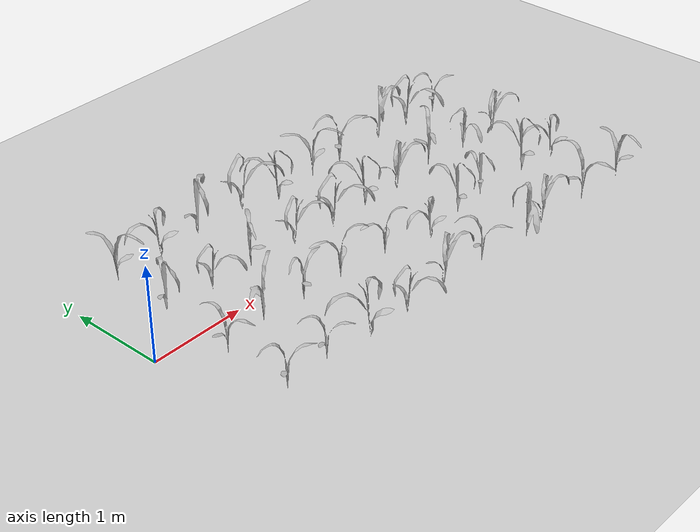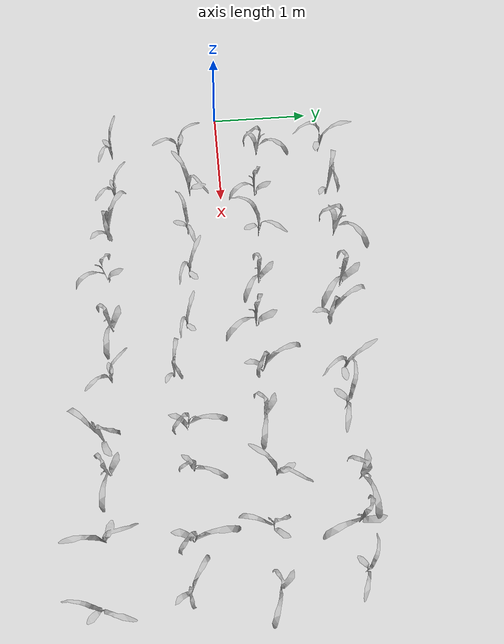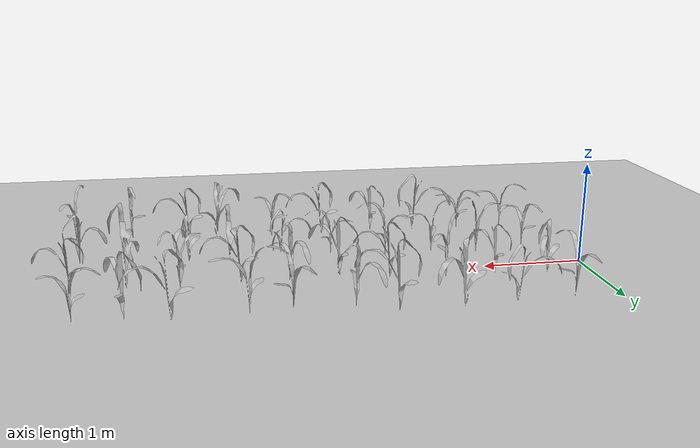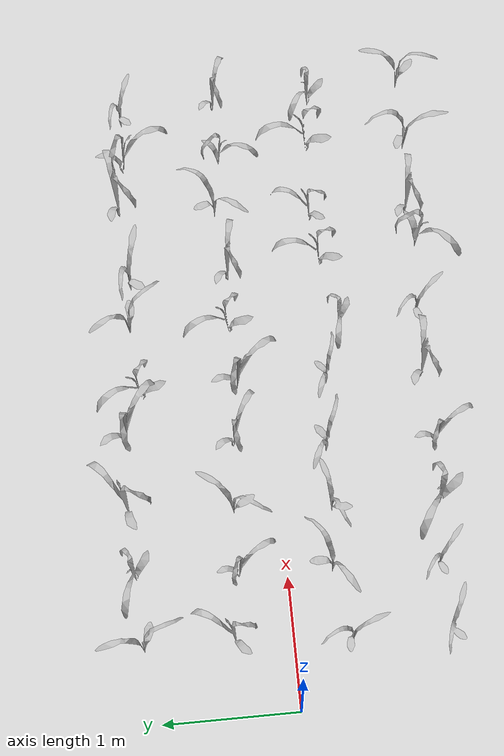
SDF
<sdf version="1.6">
 <world name="default">
  <model name="ground_plane">
   <static>1</static>
   <link name="link">
    <collision name="collision">
     <geometry><plane><normal>0 0 1</normal><size>100 100</size></plane></geometry>
     <surface>
      <contact><collide_bitmask>65535</collide_bitmask></contact>
      <friction><ode><mu>100</mu><mu2>50</mu2></ode></friction>
     </surface>
    </collision>
    <visual name="visual">
     <cast_shadows>0</cast_shadows>
     <geometry><plane><normal>0 0 1</normal><size>100 100</size></plane></geometry>
     <material>
      <script><uri>file://media/materials/scripts/gazebo.material</uri><name>Gazebo/Grey</name></script>
     </material>
    </visual>
   </link>
  </model>
  <model name="maize_01_0000">
   <pose>0.523966762746438 0.4150326742908084 0.05 0 -0 1.8050301071794776</pose>
   <link name="maize_01_0000_link">
    <inertial>
     <mass>5.0</mass>
     <inertia>
      <ixx>0.0033416667</ixx>
      <ixy>0</ixy>
      <ixz>0</ixz>
      <iyy>0.0033416667</iyy>
      <iyz>0</iyz>
      <izz>0.000016666667</izz>
     </inertia>
     <pose>0 0 0.1 0 0 0</pose>
    </inertial>
    <collision name="collision">
     <pose>0 0 0.2 0 -0 0</pose>
     <geometry><box><size>0.02 0.02 0.4</size></box></geometry>
     <surface><friction><ode><mu>10</mu><mu2>10</mu2></ode></friction></surface>
    </collision>
    <visual name="visual">
     <geometry>
      <mesh>
       <uri>model://maize_01/meshes/maize_01.dae</uri>
       <scale>0.5822569920695913 0.5822569920695913 0.5822569920695913</scale>
      </mesh>
     </geometry>
    </visual>
   </link>
  </model>
  <model name="maize_02_0001">
   <pose>0.5248532753365917 1.0798717160746447 0.05 0 -0 3.9507558975377663</pose>
   <link name="maize_02_0001_link">
    <inertial>
     <mass>5.0</mass>
     <inertia>
      <ixx>0.0033416667</ixx>
      <ixy>0</ixy>
      <ixz>0</ixz>
      <iyy>0.0033416667</iyy>
      <iyz>0</iyz>
      <izz>0.000016666667</izz>
     </inertia>
     <pose>0 0 0.1 0 0 0</pose>
    </inertial>
    <collision name="collision">
     <pose>0 0 0.2 0 -0 0</pose>
     <geometry><box><size>0.02 0.02 0.4</size></box></geometry>
     <surface><friction><ode><mu>10</mu><mu2>10</mu2></ode></friction></surface>
    </collision>
    <visual name="visual">
     <geometry>
      <mesh>
       <uri>model://maize_02/meshes/maize_02.dae</uri>
       <scale>0.6298423139953372 0.6298423139953372 0.6298423139953372</scale>
      </mesh>
     </geometry>
    </visual>
   </link>
  </model>
  <model name="maize_02_0002">
   <pose>0.46515844750414903 -0.4189155606194654 0.05 0 -0 0.9365900454225843</pose>
   <link name="maize_02_0002_link">
    <inertial>
     <mass>5.0</mass>
     <inertia>
      <ixx>0.0033416667</ixx>
      <ixy>0</ixy>
      <ixz>0</ixz>
      <iyy>0.0033416667</iyy>
      <iyz>0</iyz>
      <izz>0.000016666667</izz>
     </inertia>
     <pose>0 0 0.1 0 0 0</pose>
    </inertial>
    <collision name="collision">
     <pose>0 0 0.2 0 -0 0</pose>
     <geometry><box><size>0.02 0.02 0.4</size></box></geometry>
     <surface><friction><ode><mu>10</mu><mu2>10</mu2></ode></friction></surface>
    </collision>
    <visual name="visual">
     <geometry>
      <mesh>
       <uri>model://maize_02/meshes/maize_02.dae</uri>
       <scale>0.5298663133267577 0.5298663133267577 0.5298663133267577</scale>
      </mesh>
     </geometry>
    </visual>
   </link>
  </model>
  <model name="maize_02_0003">
   <pose>0.4602447589462634 -1.132043322837041 0.05 0 -0 1.7978640900643768</pose>
   <link name="maize_02_0003_link">
    <inertial>
     <mass>5.0</mass>
     <inertia>
      <ixx>0.0033416667</ixx>
      <ixy>0</ixy>
      <ixz>0</ixz>
      <iyy>0.0033416667</iyy>
      <iyz>0</iyz>
      <izz>0.000016666667</izz>
     </inertia>
     <pose>0 0 0.1 0 0 0</pose>
    </inertial>
    <collision name="collision">
     <pose>0 0 0.2 0 -0 0</pose>
     <geometry><box><size>0.02 0.02 0.4</size></box></geometry>
     <surface><friction><ode><mu>10</mu><mu2>10</mu2></ode></friction></surface>
    </collision>
    <visual name="visual">
     <geometry>
      <mesh>
       <uri>model://maize_02/meshes/maize_02.dae</uri>
       <scale>0.5381608076337044 0.5381608076337044 0.5381608076337044</scale>
      </mesh>
     </geometry>
    </visual>
   </link>
  </model>
  <model name="maize_01_0004">
   <pose>1.0199203152615652 0.35299629401230775 0.05 0 -0 6.0382954465742475</pose>
   <link name="maize_01_0004_link">
    <inertial>
     <mass>5.0</mass>
     <inertia>
      <ixx>0.0033416667</ixx>
      <ixy>0</ixy>
      <ixz>0</ixz>
      <iyy>0.0033416667</iyy>
      <iyz>0</iyz>
      <izz>0.000016666667</izz>
     </inertia>
     <pose>0 0 0.1 0 0 0</pose>
    </inertial>
    <collision name="collision">
     <pose>0 0 0.2 0 -0 0</pose>
     <geometry><box><size>0.02 0.02 0.4</size></box></geometry>
     <surface><friction><ode><mu>10</mu><mu2>10</mu2></ode></friction></surface>
    </collision>
    <visual name="visual">
     <geometry>
      <mesh>
       <uri>model://maize_01/meshes/maize_01.dae</uri>
       <scale>0.5396540530929095 0.5396540530929095 0.5396540530929095</scale>
      </mesh>
     </geometry>
    </visual>
   </link>
  </model>
  <model name="maize_01_0005">
   <pose>1.0654910295923556 1.105222662462426 0.05 0 -0 3.696057205758997</pose>
   <link name="maize_01_0005_link">
    <inertial>
     <mass>5.0</mass>
     <inertia>
      <ixx>0.0033416667</ixx>
      <ixy>0</ixy>
      <ixz>0</ixz>
      <iyy>0.0033416667</iyy>
      <iyz>0</iyz>
      <izz>0.000016666667</izz>
     </inertia>
     <pose>0 0 0.1 0 0 0</pose>
    </inertial>
    <collision name="collision">
     <pose>0 0 0.2 0 -0 0</pose>
     <geometry><box><size>0.02 0.02 0.4</size></box></geometry>
     <surface><friction><ode><mu>10</mu><mu2>10</mu2></ode></friction></surface>
    </collision>
    <visual name="visual">
     <geometry>
      <mesh>
       <uri>model://maize_01/meshes/maize_01.dae</uri>
       <scale>0.5877867600977696 0.5877867600977696 0.5877867600977696</scale>
      </mesh>
     </geometry>
    </visual>
   </link>
  </model>
  <model name="maize_02_0006">
   <pose>0.9898213369435384 -0.32654735532423174 0.05 0 -0 5.819287457244414</pose>
   <link name="maize_02_0006_link">
    <inertial>
     <mass>5.0</mass>
     <inertia>
      <ixx>0.0033416667</ixx>
      <ixy>0</ixy>
      <ixz>0</ixz>
      <iyy>0.0033416667</iyy>
      <iyz>0</iyz>
      <izz>0.000016666667</izz>
     </inertia>
     <pose>0 0 0.1 0 0 0</pose>
    </inertial>
    <collision name="collision">
     <pose>0 0 0.2 0 -0 0</pose>
     <geometry><box><size>0.02 0.02 0.4</size></box></geometry>
     <surface><friction><ode><mu>10</mu><mu2>10</mu2></ode></friction></surface>
    </collision>
    <visual name="visual">
     <geometry>
      <mesh>
       <uri>model://maize_02/meshes/maize_02.dae</uri>
       <scale>0.6463608204224338 0.6463608204224338 0.6463608204224338</scale>
      </mesh>
     </geometry>
    </visual>
   </link>
  </model>
  <model name="maize_02_0007">
   <pose>0.961585045974226 -1.1105220143562582 0.05 0 -0 1.4668708817369676</pose>
   <link name="maize_02_0007_link">
    <inertial>
     <mass>5.0</mass>
     <inertia>
      <ixx>0.0033416667</ixx>
      <ixy>0</ixy>
      <ixz>0</ixz>
      <iyy>0.0033416667</iyy>
      <iyz>0</iyz>
      <izz>0.000016666667</izz>
     </inertia>
     <pose>0 0 0.1 0 0 0</pose>
    </inertial>
    <collision name="collision">
     <pose>0 0 0.2 0 -0 0</pose>
     <geometry><box><size>0.02 0.02 0.4</size></box></geometry>
     <surface><friction><ode><mu>10</mu><mu2>10</mu2></ode></friction></surface>
    </collision>
    <visual name="visual">
     <geometry>
      <mesh>
       <uri>model://maize_02/meshes/maize_02.dae</uri>
       <scale>0.5000459984883049 0.5000459984883049 0.5000459984883049</scale>
      </mesh>
     </geometry>
    </visual>
   </link>
  </model>
  <model name="maize_02_0008">
   <pose>1.503632227551504 0.349260133318818 0.05 0 -0 3.076100888778547</pose>
   <link name="maize_02_0008_link">
    <inertial>
     <mass>5.0</mass>
     <inertia>
      <ixx>0.0033416667</ixx>
      <ixy>0</ixy>
      <ixz>0</ixz>
      <iyy>0.0033416667</iyy>
      <iyz>0</iyz>
      <izz>0.000016666667</izz>
     </inertia>
     <pose>0 0 0.1 0 0 0</pose>
    </inertial>
    <collision name="collision">
     <pose>0 0 0.2 0 -0 0</pose>
     <geometry><box><size>0.02 0.02 0.4</size></box></geometry>
     <surface><friction><ode><mu>10</mu><mu2>10</mu2></ode></friction></surface>
    </collision>
    <visual name="visual">
     <geometry>
      <mesh>
       <uri>model://maize_02/meshes/maize_02.dae</uri>
       <scale>0.6283412082809666 0.6283412082809666 0.6283412082809666</scale>
      </mesh>
     </geometry>
    </visual>
   </link>
  </model>
  <model name="maize_01_0009">
   <pose>1.558977972683102 1.1187317562141557 0.05 0 -0 1.4716533760433117</pose>
   <link name="maize_01_0009_link">
    <inertial>
     <mass>5.0</mass>
     <inertia>
      <ixx>0.0033416667</ixx>
      <ixy>0</ixy>
      <ixz>0</ixz>
      <iyy>0.0033416667</iyy>
      <iyz>0</iyz>
      <izz>0.000016666667</izz>
     </inertia>
     <pose>0 0 0.1 0 0 0</pose>
    </inertial>
    <collision name="collision">
     <pose>0 0 0.2 0 -0 0</pose>
     <geometry><box><size>0.02 0.02 0.4</size></box></geometry>
     <surface><friction><ode><mu>10</mu><mu2>10</mu2></ode></friction></surface>
    </collision>
    <visual name="visual">
     <geometry>
      <mesh>
       <uri>model://maize_01/meshes/maize_01.dae</uri>
       <scale>0.6826799311454922 0.6826799311454922 0.6826799311454922</scale>
      </mesh>
     </geometry>
    </visual>
   </link>
  </model>
  <model name="maize_02_0010">
   <pose>1.4536848330133545 -0.37425566543067856 0.05 0 -0 2.422375687809505</pose>
   <link name="maize_02_0010_link">
    <inertial>
     <mass>5.0</mass>
     <inertia>
      <ixx>0.0033416667</ixx>
      <ixy>0</ixy>
      <ixz>0</ixz>
      <iyy>0.0033416667</iyy>
      <iyz>0</iyz>
      <izz>0.000016666667</izz>
     </inertia>
     <pose>0 0 0.1 0 0 0</pose>
    </inertial>
    <collision name="collision">
     <pose>0 0 0.2 0 -0 0</pose>
     <geometry><box><size>0.02 0.02 0.4</size></box></geometry>
     <surface><friction><ode><mu>10</mu><mu2>10</mu2></ode></friction></surface>
    </collision>
    <visual name="visual">
     <geometry>
      <mesh>
       <uri>model://maize_02/meshes/maize_02.dae</uri>
       <scale>0.5736782465919196 0.5736782465919196 0.5736782465919196</scale>
      </mesh>
     </geometry>
    </visual>
   </link>
  </model>
  <model name="maize_01_0011">
   <pose>1.4444675356432104 -1.179642887555723 0.05 0 -0 3.4122779563719514</pose>
   <link name="maize_01_0011_link">
    <inertial>
     <mass>5.0</mass>
     <inertia>
      <ixx>0.0033416667</ixx>
      <ixy>0</ixy>
      <ixz>0</ixz>
      <iyy>0.0033416667</iyy>
      <iyz>0</iyz>
      <izz>0.000016666667</izz>
     </inertia>
     <pose>0 0 0.1 0 0 0</pose>
    </inertial>
    <collision name="collision">
     <pose>0 0 0.2 0 -0 0</pose>
     <geometry><box><size>0.02 0.02 0.4</size></box></geometry>
     <surface><friction><ode><mu>10</mu><mu2>10</mu2></ode></friction></surface>
    </collision>
    <visual name="visual">
     <geometry>
      <mesh>
       <uri>model://maize_01/meshes/maize_01.dae</uri>
       <scale>0.6784095090481377 0.6784095090481377 0.6784095090481377</scale>
      </mesh>
     </geometry>
    </visual>
   </link>
  </model>
  <model name="maize_01_0012">
   <pose>2.040732868175381 0.3005195694070919 0.05 0 -0 0.2899796782961759</pose>
   <link name="maize_01_0012_link">
    <inertial>
     <mass>5.0</mass>
     <inertia>
      <ixx>0.0033416667</ixx>
      <ixy>0</ixy>
      <ixz>0</ixz>
      <iyy>0.0033416667</iyy>
      <iyz>0</iyz>
      <izz>0.000016666667</izz>
     </inertia>
     <pose>0 0 0.1 0 0 0</pose>
    </inertial>
    <collision name="collision">
     <pose>0 0 0.2 0 -0 0</pose>
     <geometry><box><size>0.02 0.02 0.4</size></box></geometry>
     <surface><friction><ode><mu>10</mu><mu2>10</mu2></ode></friction></surface>
    </collision>
    <visual name="visual">
     <geometry>
      <mesh>
       <uri>model://maize_01/meshes/maize_01.dae</uri>
       <scale>0.595256392992198 0.595256392992198 0.595256392992198</scale>
      </mesh>
     </geometry>
    </visual>
   </link>
  </model>
  <model name="maize_01_0013">
   <pose>2.1368719891017847 1.106180763564035 0.05 0 -0 0.16974797185114474</pose>
   <link name="maize_01_0013_link">
    <inertial>
     <mass>5.0</mass>
     <inertia>
      <ixx>0.0033416667</ixx>
      <ixy>0</ixy>
      <ixz>0</ixz>
      <iyy>0.0033416667</iyy>
      <iyz>0</iyz>
      <izz>0.000016666667</izz>
     </inertia>
     <pose>0 0 0.1 0 0 0</pose>
    </inertial>
    <collision name="collision">
     <pose>0 0 0.2 0 -0 0</pose>
     <geometry><box><size>0.02 0.02 0.4</size></box></geometry>
     <surface><friction><ode><mu>10</mu><mu2>10</mu2></ode></friction></surface>
    </collision>
    <visual name="visual">
     <geometry>
      <mesh>
       <uri>model://maize_01/meshes/maize_01.dae</uri>
       <scale>0.6979724031252235 0.6979724031252235 0.6979724031252235</scale>
      </mesh>
     </geometry>
    </visual>
   </link>
  </model>
  <model name="maize_02_0014">
   <pose>1.931780257444167 -0.3824474502754521 0.05 0 -0 4.886222668759558</pose>
   <link name="maize_02_0014_link">
    <inertial>
     <mass>5.0</mass>
     <inertia>
      <ixx>0.0033416667</ixx>
      <ixy>0</ixy>
      <ixz>0</ixz>
      <iyy>0.0033416667</iyy>
      <iyz>0</iyz>
      <izz>0.000016666667</izz>
     </inertia>
     <pose>0 0 0.1 0 0 0</pose>
    </inertial>
    <collision name="collision">
     <pose>0 0 0.2 0 -0 0</pose>
     <geometry><box><size>0.02 0.02 0.4</size></box></geometry>
     <surface><friction><ode><mu>10</mu><mu2>10</mu2></ode></friction></surface>
    </collision>
    <visual name="visual">
     <geometry>
      <mesh>
       <uri>model://maize_02/meshes/maize_02.dae</uri>
       <scale>0.575836024601679 0.575836024601679 0.575836024601679</scale>
      </mesh>
     </geometry>
    </visual>
   </link>
  </model>
  <model name="maize_01_0015">
   <pose>1.9133926375941699 -1.2037670079675775 0.05 0 -0 6.033506653099774</pose>
   <link name="maize_01_0015_link">
    <inertial>
     <mass>5.0</mass>
     <inertia>
      <ixx>0.0033416667</ixx>
      <ixy>0</ixy>
      <ixz>0</ixz>
      <iyy>0.0033416667</iyy>
      <iyz>0</iyz>
      <izz>0.000016666667</izz>
     </inertia>
     <pose>0 0 0.1 0 0 0</pose>
    </inertial>
    <collision name="collision">
     <pose>0 0 0.2 0 -0 0</pose>
     <geometry><box><size>0.02 0.02 0.4</size></box></geometry>
     <surface><friction><ode><mu>10</mu><mu2>10</mu2></ode></friction></surface>
    </collision>
    <visual name="visual">
     <geometry>
      <mesh>
       <uri>model://maize_01/meshes/maize_01.dae</uri>
       <scale>0.5581267760683764 0.5581267760683764 0.5581267760683764</scale>
      </mesh>
     </geometry>
    </visual>
   </link>
  </model>
  <model name="maize_01_0016">
   <pose>2.510246999128019 0.23787252884046153 0.05 0 -0 6.144129899424734</pose>
   <link name="maize_01_0016_link">
    <inertial>
     <mass>5.0</mass>
     <inertia>
      <ixx>0.0033416667</ixx>
      <ixy>0</ixy>
      <ixz>0</ixz>
      <iyy>0.0033416667</iyy>
      <iyz>0</iyz>
      <izz>0.000016666667</izz>
     </inertia>
     <pose>0 0 0.1 0 0 0</pose>
    </inertial>
    <collision name="collision">
     <pose>0 0 0.2 0 -0 0</pose>
     <geometry><box><size>0.02 0.02 0.4</size></box></geometry>
     <surface><friction><ode><mu>10</mu><mu2>10</mu2></ode></friction></surface>
    </collision>
    <visual name="visual">
     <geometry>
      <mesh>
       <uri>model://maize_01/meshes/maize_01.dae</uri>
       <scale>0.6562338403578362 0.6562338403578362 0.6562338403578362</scale>
      </mesh>
     </geometry>
    </visual>
   </link>
  </model>
  <model name="maize_01_0017">
   <pose>2.493166982556981 0.9630720818078856 0.05 0 -0 2.861048662569731</pose>
   <link name="maize_01_0017_link">
    <inertial>
     <mass>5.0</mass>
     <inertia>
      <ixx>0.0033416667</ixx>
      <ixy>0</ixy>
      <ixz>0</ixz>
      <iyy>0.0033416667</iyy>
      <iyz>0</iyz>
      <izz>0.000016666667</izz>
     </inertia>
     <pose>0 0 0.1 0 0 0</pose>
    </inertial>
    <collision name="collision">
     <pose>0 0 0.2 0 -0 0</pose>
     <geometry><box><size>0.02 0.02 0.4</size></box></geometry>
     <surface><friction><ode><mu>10</mu><mu2>10</mu2></ode></friction></surface>
    </collision>
    <visual name="visual">
     <geometry>
      <mesh>
       <uri>model://maize_01/meshes/maize_01.dae</uri>
       <scale>0.629477505941498 0.629477505941498 0.629477505941498</scale>
      </mesh>
     </geometry>
    </visual>
   </link>
  </model>
  <model name="maize_02_0018">
   <pose>2.4838026439865604 -0.44149562420554733 0.05 0 -0 4.993970586922383</pose>
   <link name="maize_02_0018_link">
    <inertial>
     <mass>5.0</mass>
     <inertia>
      <ixx>0.0033416667</ixx>
      <ixy>0</ixy>
      <ixz>0</ixz>
      <iyy>0.0033416667</iyy>
      <iyz>0</iyz>
      <izz>0.000016666667</izz>
     </inertia>
     <pose>0 0 0.1 0 0 0</pose>
    </inertial>
    <collision name="collision">
     <pose>0 0 0.2 0 -0 0</pose>
     <geometry><box><size>0.02 0.02 0.4</size></box></geometry>
     <surface><friction><ode><mu>10</mu><mu2>10</mu2></ode></friction></surface>
    </collision>
    <visual name="visual">
     <geometry>
      <mesh>
       <uri>model://maize_02/meshes/maize_02.dae</uri>
       <scale>0.5095507926992316 0.5095507926992316 0.5095507926992316</scale>
      </mesh>
     </geometry>
    </visual>
   </link>
  </model>
  <model name="maize_01_0019">
   <pose>2.4671652501393573 -1.1738254497009892 0.05 0 -0 0.7211971315318042</pose>
   <link name="maize_01_0019_link">
    <inertial>
     <mass>5.0</mass>
     <inertia>
      <ixx>0.0033416667</ixx>
      <ixy>0</ixy>
      <ixz>0</ixz>
      <iyy>0.0033416667</iyy>
      <iyz>0</iyz>
      <izz>0.000016666667</izz>
     </inertia>
     <pose>0 0 0.1 0 0 0</pose>
    </inertial>
    <collision name="collision">
     <pose>0 0 0.2 0 -0 0</pose>
     <geometry><box><size>0.02 0.02 0.4</size></box></geometry>
     <surface><friction><ode><mu>10</mu><mu2>10</mu2></ode></friction></surface>
    </collision>
    <visual name="visual">
     <geometry>
      <mesh>
       <uri>model://maize_01/meshes/maize_01.dae</uri>
       <scale>0.629807478542989 0.629807478542989 0.629807478542989</scale>
      </mesh>
     </geometry>
    </visual>
   </link>
  </model>
  <model name="maize_01_0020">
   <pose>2.9889529004716753 0.25801577047027513 0.05 0 -0 2.71639642661828</pose>
   <link name="maize_01_0020_link">
    <inertial>
     <mass>5.0</mass>
     <inertia>
      <ixx>0.0033416667</ixx>
      <ixy>0</ixy>
      <ixz>0</ixz>
      <iyy>0.0033416667</iyy>
      <iyz>0</iyz>
      <izz>0.000016666667</izz>
     </inertia>
     <pose>0 0 0.1 0 0 0</pose>
    </inertial>
    <collision name="collision">
     <pose>0 0 0.2 0 -0 0</pose>
     <geometry><box><size>0.02 0.02 0.4</size></box></geometry>
     <surface><friction><ode><mu>10</mu><mu2>10</mu2></ode></friction></surface>
    </collision>
    <visual name="visual">
     <geometry>
      <mesh>
       <uri>model://maize_01/meshes/maize_01.dae</uri>
       <scale>0.6221070844538605 0.6221070844538605 0.6221070844538605</scale>
      </mesh>
     </geometry>
    </visual>
   </link>
  </model>
  <model name="maize_02_0021">
   <pose>3.0520632059223862 1.0240751103559858 0.05 0 -0 4.261147328329564</pose>
   <link name="maize_02_0021_link">
    <inertial>
     <mass>5.0</mass>
     <inertia>
      <ixx>0.0033416667</ixx>
      <ixy>0</ixy>
      <ixz>0</ixz>
      <iyy>0.0033416667</iyy>
      <iyz>0</iyz>
      <izz>0.000016666667</izz>
     </inertia>
     <pose>0 0 0.1 0 0 0</pose>
    </inertial>
    <collision name="collision">
     <pose>0 0 0.2 0 -0 0</pose>
     <geometry><box><size>0.02 0.02 0.4</size></box></geometry>
     <surface><friction><ode><mu>10</mu><mu2>10</mu2></ode></friction></surface>
    </collision>
    <visual name="visual">
     <geometry>
      <mesh>
       <uri>model://maize_02/meshes/maize_02.dae</uri>
       <scale>0.6331911358099501 0.6331911358099501 0.6331911358099501</scale>
      </mesh>
     </geometry>
    </visual>
   </link>
  </model>
  <model name="maize_01_0022">
   <pose>2.97400271973419 -0.5918598628877113 0.05 0 -0 3.7910285614634462</pose>
   <link name="maize_01_0022_link">
    <inertial>
     <mass>5.0</mass>
     <inertia>
      <ixx>0.0033416667</ixx>
      <ixy>0</ixy>
      <ixz>0</ixz>
      <iyy>0.0033416667</iyy>
      <iyz>0</iyz>
      <izz>0.000016666667</izz>
     </inertia>
     <pose>0 0 0.1 0 0 0</pose>
    </inertial>
    <collision name="collision">
     <pose>0 0 0.2 0 -0 0</pose>
     <geometry><box><size>0.02 0.02 0.4</size></box></geometry>
     <surface><friction><ode><mu>10</mu><mu2>10</mu2></ode></friction></surface>
    </collision>
    <visual name="visual">
     <geometry>
      <mesh>
       <uri>model://maize_01/meshes/maize_01.dae</uri>
       <scale>0.5028517858773822 0.5028517858773822 0.5028517858773822</scale>
      </mesh>
     </geometry>
    </visual>
   </link>
  </model>
  <model name="maize_02_0023">
   <pose>2.994720311939697 -1.1945998067587797 0.05 0 -0 1.3100654780904493</pose>
   <link name="maize_02_0023_link">
    <inertial>
     <mass>5.0</mass>
     <inertia>
      <ixx>0.0033416667</ixx>
      <ixy>0</ixy>
      <ixz>0</ixz>
      <iyy>0.0033416667</iyy>
      <iyz>0</iyz>
      <izz>0.000016666667</izz>
     </inertia>
     <pose>0 0 0.1 0 0 0</pose>
    </inertial>
    <collision name="collision">
     <pose>0 0 0.2 0 -0 0</pose>
     <geometry><box><size>0.02 0.02 0.4</size></box></geometry>
     <surface><friction><ode><mu>10</mu><mu2>10</mu2></ode></friction></surface>
    </collision>
    <visual name="visual">
     <geometry>
      <mesh>
       <uri>model://maize_02/meshes/maize_02.dae</uri>
       <scale>0.5348060385841131 0.5348060385841131 0.5348060385841131</scale>
      </mesh>
     </geometry>
    </visual>
   </link>
  </model>
  <model name="maize_01_0024">
   <pose>3.443074180217835 0.2284497880585611 0.05 0 -0 0.639792568922252</pose>
   <link name="maize_01_0024_link">
    <inertial>
     <mass>5.0</mass>
     <inertia>
      <ixx>0.0033416667</ixx>
      <ixy>0</ixy>
      <ixz>0</ixz>
      <iyy>0.0033416667</iyy>
      <iyz>0</iyz>
      <izz>0.000016666667</izz>
     </inertia>
     <pose>0 0 0.1 0 0 0</pose>
    </inertial>
    <collision name="collision">
     <pose>0 0 0.2 0 -0 0</pose>
     <geometry><box><size>0.02 0.02 0.4</size></box></geometry>
     <surface><friction><ode><mu>10</mu><mu2>10</mu2></ode></friction></surface>
    </collision>
    <visual name="visual">
     <geometry>
      <mesh>
       <uri>model://maize_01/meshes/maize_01.dae</uri>
       <scale>0.6128064751184193 0.6128064751184193 0.6128064751184193</scale>
      </mesh>
     </geometry>
    </visual>
   </link>
  </model>
  <model name="maize_02_0025">
   <pose>3.423280574257146 0.992229800525366 0.05 0 -0 1.9450103717449692</pose>
   <link name="maize_02_0025_link">
    <inertial>
     <mass>5.0</mass>
     <inertia>
      <ixx>0.0033416667</ixx>
      <ixy>0</ixy>
      <ixz>0</ixz>
      <iyy>0.0033416667</iyy>
      <iyz>0</iyz>
      <izz>0.000016666667</izz>
     </inertia>
     <pose>0 0 0.1 0 0 0</pose>
    </inertial>
    <collision name="collision">
     <pose>0 0 0.2 0 -0 0</pose>
     <geometry><box><size>0.02 0.02 0.4</size></box></geometry>
     <surface><friction><ode><mu>10</mu><mu2>10</mu2></ode></friction></surface>
    </collision>
    <visual name="visual">
     <geometry>
      <mesh>
       <uri>model://maize_02/meshes/maize_02.dae</uri>
       <scale>0.665604324518885 0.665604324518885 0.665604324518885</scale>
      </mesh>
     </geometry>
    </visual>
   </link>
  </model>
  <model name="maize_01_0026">
   <pose>3.5062867528112833 -0.5004778221379712 0.05 0 -0 2.3216417221331356</pose>
   <link name="maize_01_0026_link">
    <inertial>
     <mass>5.0</mass>
     <inertia>
      <ixx>0.0033416667</ixx>
      <ixy>0</ixy>
      <ixz>0</ixz>
      <iyy>0.0033416667</iyy>
      <iyz>0</iyz>
      <izz>0.000016666667</izz>
     </inertia>
     <pose>0 0 0.1 0 0 0</pose>
    </inertial>
    <collision name="collision">
     <pose>0 0 0.2 0 -0 0</pose>
     <geometry><box><size>0.02 0.02 0.4</size></box></geometry>
     <surface><friction><ode><mu>10</mu><mu2>10</mu2></ode></friction></surface>
    </collision>
    <visual name="visual">
     <geometry>
      <mesh>
       <uri>model://maize_01/meshes/maize_01.dae</uri>
       <scale>0.6098890040684718 0.6098890040684718 0.6098890040684718</scale>
      </mesh>
     </geometry>
    </visual>
   </link>
  </model>
  <model name="maize_01_0027">
   <pose>3.5920836885190277 -1.2672288973604182 0.05 0 -0 4.774702933948235</pose>
   <link name="maize_01_0027_link">
    <inertial>
     <mass>5.0</mass>
     <inertia>
      <ixx>0.0033416667</ixx>
      <ixy>0</ixy>
      <ixz>0</ixz>
      <iyy>0.0033416667</iyy>
      <iyz>0</iyz>
      <izz>0.000016666667</izz>
     </inertia>
     <pose>0 0 0.1 0 0 0</pose>
    </inertial>
    <collision name="collision">
     <pose>0 0 0.2 0 -0 0</pose>
     <geometry><box><size>0.02 0.02 0.4</size></box></geometry>
     <surface><friction><ode><mu>10</mu><mu2>10</mu2></ode></friction></surface>
    </collision>
    <visual name="visual">
     <geometry>
      <mesh>
       <uri>model://maize_01/meshes/maize_01.dae</uri>
       <scale>0.6556921403700694 0.6556921403700694 0.6556921403700694</scale>
      </mesh>
     </geometry>
    </visual>
   </link>
  </model>
  <model name="maize_02_0028">
   <pose>4.002339001380929 0.28708051347078645 0.05 0 -0 6.212871286915344</pose>
   <link name="maize_02_0028_link">
    <inertial>
     <mass>5.0</mass>
     <inertia>
      <ixx>0.0033416667</ixx>
      <ixy>0</ixy>
      <ixz>0</ixz>
      <iyy>0.0033416667</iyy>
      <iyz>0</iyz>
      <izz>0.000016666667</izz>
     </inertia>
     <pose>0 0 0.1 0 0 0</pose>
    </inertial>
    <collision name="collision">
     <pose>0 0 0.2 0 -0 0</pose>
     <geometry><box><size>0.02 0.02 0.4</size></box></geometry>
     <surface><friction><ode><mu>10</mu><mu2>10</mu2></ode></friction></surface>
    </collision>
    <visual name="visual">
     <geometry>
      <mesh>
       <uri>model://maize_02/meshes/maize_02.dae</uri>
       <scale>0.6356348580165118 0.6356348580165118 0.6356348580165118</scale>
      </mesh>
     </geometry>
    </visual>
   </link>
  </model>
  <model name="maize_01_0029">
   <pose>4.089465292540867 1.0392879885186976 0.05 0 -0 0.9478603963230247</pose>
   <link name="maize_01_0029_link">
    <inertial>
     <mass>5.0</mass>
     <inertia>
      <ixx>0.0033416667</ixx>
      <ixy>0</ixy>
      <ixz>0</ixz>
      <iyy>0.0033416667</iyy>
      <iyz>0</iyz>
      <izz>0.000016666667</izz>
     </inertia>
     <pose>0 0 0.1 0 0 0</pose>
    </inertial>
    <collision name="collision">
     <pose>0 0 0.2 0 -0 0</pose>
     <geometry><box><size>0.02 0.02 0.4</size></box></geometry>
     <surface><friction><ode><mu>10</mu><mu2>10</mu2></ode></friction></surface>
    </collision>
    <visual name="visual">
     <geometry>
      <mesh>
       <uri>model://maize_01/meshes/maize_01.dae</uri>
       <scale>0.6862345623201176 0.6862345623201176 0.6862345623201176</scale>
      </mesh>
     </geometry>
    </visual>
   </link>
  </model>
  <model name="maize_01_0030">
   <pose>3.9111913381568097 -0.46276025048916475 0.05 0 -0 1.9455105480501291</pose>
   <link name="maize_01_0030_link">
    <inertial>
     <mass>5.0</mass>
     <inertia>
      <ixx>0.0033416667</ixx>
      <ixy>0</ixy>
      <ixz>0</ixz>
      <iyy>0.0033416667</iyy>
      <iyz>0</iyz>
      <izz>0.000016666667</izz>
     </inertia>
     <pose>0 0 0.1 0 0 0</pose>
    </inertial>
    <collision name="collision">
     <pose>0 0 0.2 0 -0 0</pose>
     <geometry><box><size>0.02 0.02 0.4</size></box></geometry>
     <surface><friction><ode><mu>10</mu><mu2>10</mu2></ode></friction></surface>
    </collision>
    <visual name="visual">
     <geometry>
      <mesh>
       <uri>model://maize_01/meshes/maize_01.dae</uri>
       <scale>0.526570501130631 0.526570501130631 0.526570501130631</scale>
      </mesh>
     </geometry>
    </visual>
   </link>
  </model>
  <model name="maize_01_0031">
   <pose>3.8928818067296707 -1.2288936645430941 0.05 0 -0 0.6694644330116607</pose>
   <link name="maize_01_0031_link">
    <inertial>
     <mass>5.0</mass>
     <inertia>
      <ixx>0.0033416667</ixx>
      <ixy>0</ixy>
      <ixz>0</ixz>
      <iyy>0.0033416667</iyy>
      <iyz>0</iyz>
      <izz>0.000016666667</izz>
     </inertia>
     <pose>0 0 0.1 0 0 0</pose>
    </inertial>
    <collision name="collision">
     <pose>0 0 0.2 0 -0 0</pose>
     <geometry><box><size>0.02 0.02 0.4</size></box></geometry>
     <surface><friction><ode><mu>10</mu><mu2>10</mu2></ode></friction></surface>
    </collision>
    <visual name="visual">
     <geometry>
      <mesh>
       <uri>model://maize_01/meshes/maize_01.dae</uri>
       <scale>0.6072951427507317 0.6072951427507317 0.6072951427507317</scale>
      </mesh>
     </geometry>
    </visual>
   </link>
  </model>
  <model name="maize_01_0032">
   <pose>4.483130657835956 0.2181703435077315 0.05 0 -0 5.194716972884884</pose>
   <link name="maize_01_0032_link">
    <inertial>
     <mass>5.0</mass>
     <inertia>
      <ixx>0.0033416667</ixx>
      <ixy>0</ixy>
      <ixz>0</ixz>
      <iyy>0.0033416667</iyy>
      <iyz>0</iyz>
      <izz>0.000016666667</izz>
     </inertia>
     <pose>0 0 0.1 0 0 0</pose>
    </inertial>
    <collision name="collision">
     <pose>0 0 0.2 0 -0 0</pose>
     <geometry><box><size>0.02 0.02 0.4</size></box></geometry>
     <surface><friction><ode><mu>10</mu><mu2>10</mu2></ode></friction></surface>
    </collision>
    <visual name="visual">
     <geometry>
      <mesh>
       <uri>model://maize_01/meshes/maize_01.dae</uri>
       <scale>0.5381228093750381 0.5381228093750381 0.5381228093750381</scale>
      </mesh>
     </geometry>
    </visual>
   </link>
  </model>
  <model name="maize_01_0033">
   <pose>4.474949129762452 0.9862563068267514 0.05 0 -0 5.887725121790559</pose>
   <link name="maize_01_0033_link">
    <inertial>
     <mass>5.0</mass>
     <inertia>
      <ixx>0.0033416667</ixx>
      <ixy>0</ixy>
      <ixz>0</ixz>
      <iyy>0.0033416667</iyy>
      <iyz>0</iyz>
      <izz>0.000016666667</izz>
     </inertia>
     <pose>0 0 0.1 0 0 0</pose>
    </inertial>
    <collision name="collision">
     <pose>0 0 0.2 0 -0 0</pose>
     <geometry><box><size>0.02 0.02 0.4</size></box></geometry>
     <surface><friction><ode><mu>10</mu><mu2>10</mu2></ode></friction></surface>
    </collision>
    <visual name="visual">
     <geometry>
      <mesh>
       <uri>model://maize_01/meshes/maize_01.dae</uri>
       <scale>0.6739857275312071 0.6739857275312071 0.6739857275312071</scale>
      </mesh>
     </geometry>
    </visual>
   </link>
  </model>
  <model name="maize_01_0034">
   <pose>4.544771440879142 -0.5000676885154269 0.05 0 -0 2.4597328034436954</pose>
   <link name="maize_01_0034_link">
    <inertial>
     <mass>5.0</mass>
     <inertia>
      <ixx>0.0033416667</ixx>
      <ixy>0</ixy>
      <ixz>0</ixz>
      <iyy>0.0033416667</iyy>
      <iyz>0</iyz>
      <izz>0.000016666667</izz>
     </inertia>
     <pose>0 0 0.1 0 0 0</pose>
    </inertial>
    <collision name="collision">
     <pose>0 0 0.2 0 -0 0</pose>
     <geometry><box><size>0.02 0.02 0.4</size></box></geometry>
     <surface><friction><ode><mu>10</mu><mu2>10</mu2></ode></friction></surface>
    </collision>
    <visual name="visual">
     <geometry>
      <mesh>
       <uri>model://maize_01/meshes/maize_01.dae</uri>
       <scale>0.6755858032378665 0.6755858032378665 0.6755858032378665</scale>
      </mesh>
     </geometry>
    </visual>
   </link>
  </model>
  <model name="maize_02_0035">
   <pose>4.48810724896792 -1.282390259113714 0.05 0 -0 0.7057874232195723</pose>
   <link name="maize_02_0035_link">
    <inertial>
     <mass>5.0</mass>
     <inertia>
      <ixx>0.0033416667</ixx>
      <ixy>0</ixy>
      <ixz>0</ixz>
      <iyy>0.0033416667</iyy>
      <iyz>0</iyz>
      <izz>0.000016666667</izz>
     </inertia>
     <pose>0 0 0.1 0 0 0</pose>
    </inertial>
    <collision name="collision">
     <pose>0 0 0.2 0 -0 0</pose>
     <geometry><box><size>0.02 0.02 0.4</size></box></geometry>
     <surface><friction><ode><mu>10</mu><mu2>10</mu2></ode></friction></surface>
    </collision>
    <visual name="visual">
     <geometry>
      <mesh>
       <uri>model://maize_02/meshes/maize_02.dae</uri>
       <scale>0.6703926624739526 0.6703926624739526 0.6703926624739526</scale>
      </mesh>
     </geometry>
    </visual>
   </link>
  </model>
  <model name="maize_01_0036">
   <pose>4.991810056498151 0.2211237160717848 0.05 0 -0 0.48154976762973434</pose>
   <link name="maize_01_0036_link">
    <inertial>
     <mass>5.0</mass>
     <inertia>
      <ixx>0.0033416667</ixx>
      <ixy>0</ixy>
      <ixz>0</ixz>
      <iyy>0.0033416667</iyy>
      <iyz>0</iyz>
      <izz>0.000016666667</izz>
     </inertia>
     <pose>0 0 0.1 0 0 0</pose>
    </inertial>
    <collision name="collision">
     <pose>0 0 0.2 0 -0 0</pose>
     <geometry><box><size>0.02 0.02 0.4</size></box></geometry>
     <surface><friction><ode><mu>10</mu><mu2>10</mu2></ode></friction></surface>
    </collision>
    <visual name="visual">
     <geometry>
      <mesh>
       <uri>model://maize_01/meshes/maize_01.dae</uri>
       <scale>0.5598796415592937 0.5598796415592937 0.5598796415592937</scale>
      </mesh>
     </geometry>
    </visual>
   </link>
  </model>
  <model name="maize_02_0037">
   <pose>4.908736499374385 0.9768782011245747 0.05 0 -0 1.8294438370918091</pose>
   <link name="maize_02_0037_link">
    <inertial>
     <mass>5.0</mass>
     <inertia>
      <ixx>0.0033416667</ixx>
      <ixy>0</ixy>
      <ixz>0</ixz>
      <iyy>0.0033416667</iyy>
      <iyz>0</iyz>
      <izz>0.000016666667</izz>
     </inertia>
     <pose>0 0 0.1 0 0 0</pose>
    </inertial>
    <collision name="collision">
     <pose>0 0 0.2 0 -0 0</pose>
     <geometry><box><size>0.02 0.02 0.4</size></box></geometry>
     <surface><friction><ode><mu>10</mu><mu2>10</mu2></ode></friction></surface>
    </collision>
    <visual name="visual">
     <geometry>
      <mesh>
       <uri>model://maize_02/meshes/maize_02.dae</uri>
       <scale>0.5496664147344748 0.5496664147344748 0.5496664147344748</scale>
      </mesh>
     </geometry>
    </visual>
   </link>
  </model>
  <model name="maize_01_0038">
   <pose>4.976571551156914 -0.5525297962804545 0.05 0 -0 3.379482973106335</pose>
   <link name="maize_01_0038_link">
    <inertial>
     <mass>5.0</mass>
     <inertia>
      <ixx>0.0033416667</ixx>
      <ixy>0</ixy>
      <ixz>0</ixz>
      <iyy>0.0033416667</iyy>
      <iyz>0</iyz>
      <izz>0.000016666667</izz>
     </inertia>
     <pose>0 0 0.1 0 0 0</pose>
    </inertial>
    <collision name="collision">
     <pose>0 0 0.2 0 -0 0</pose>
     <geometry><box><size>0.02 0.02 0.4</size></box></geometry>
     <surface><friction><ode><mu>10</mu><mu2>10</mu2></ode></friction></surface>
    </collision>
    <visual name="visual">
     <geometry>
      <mesh>
       <uri>model://maize_01/meshes/maize_01.dae</uri>
       <scale>0.5454395372070664 0.5454395372070664 0.5454395372070664</scale>
      </mesh>
     </geometry>
    </visual>
   </link>
  </model>
  <model name="maize_02_0039">
   <pose>5.072777903811759 -1.2960011632742425 0.05 0 -0 3.4086793151289485</pose>
   <link name="maize_02_0039_link">
    <inertial>
     <mass>5.0</mass>
     <inertia>
      <ixx>0.0033416667</ixx>
      <ixy>0</ixy>
      <ixz>0</ixz>
      <iyy>0.0033416667</iyy>
      <iyz>0</iyz>
      <izz>0.000016666667</izz>
     </inertia>
     <pose>0 0 0.1 0 0 0</pose>
    </inertial>
    <collision name="collision">
     <pose>0 0 0.2 0 -0 0</pose>
     <geometry><box><size>0.02 0.02 0.4</size></box></geometry>
     <surface><friction><ode><mu>10</mu><mu2>10</mu2></ode></friction></surface>
    </collision>
    <visual name="visual">
     <geometry>
      <mesh>
       <uri>model://maize_02/meshes/maize_02.dae</uri>
       <scale>0.6224902555846658 0.6224902555846658 0.6224902555846658</scale>
      </mesh>
     </geometry>
    </visual>
   </link>
  </model>
 </world>
</sdf>
